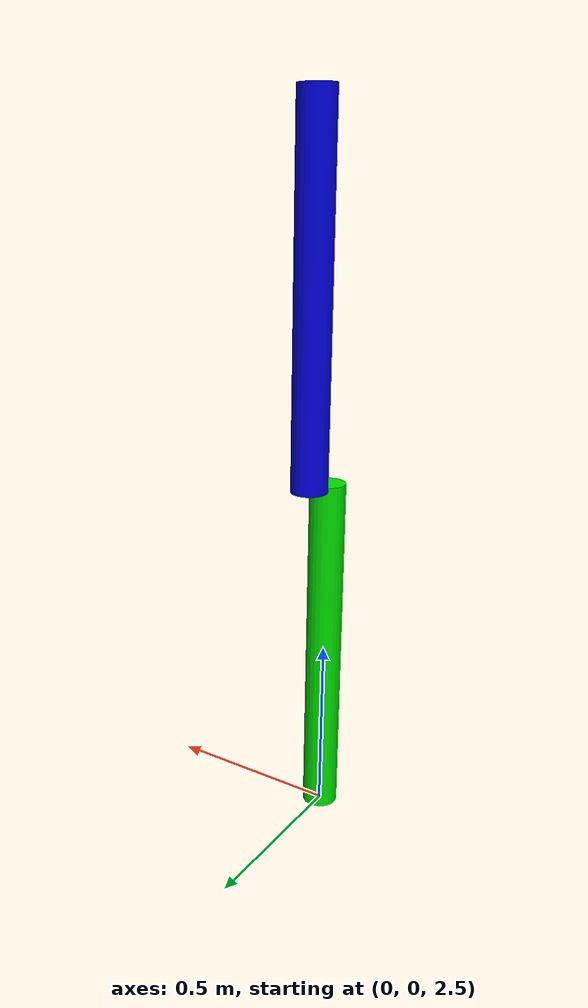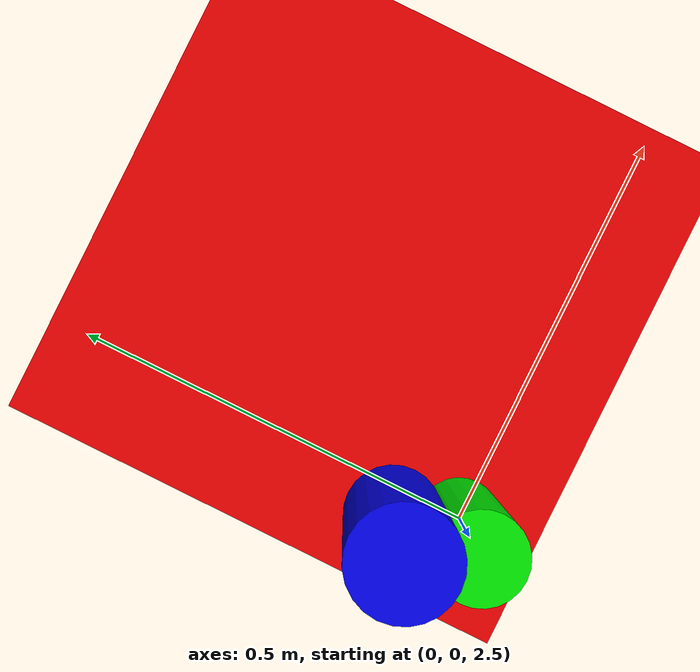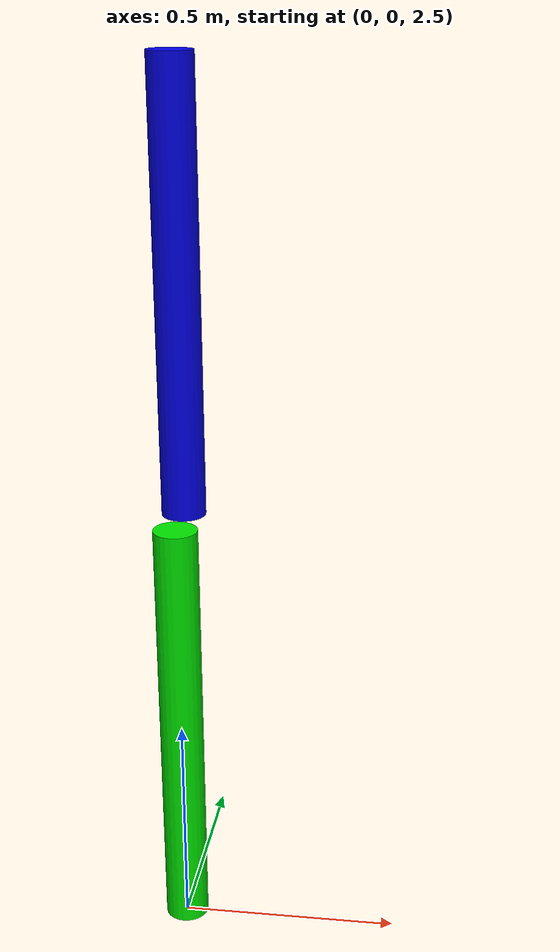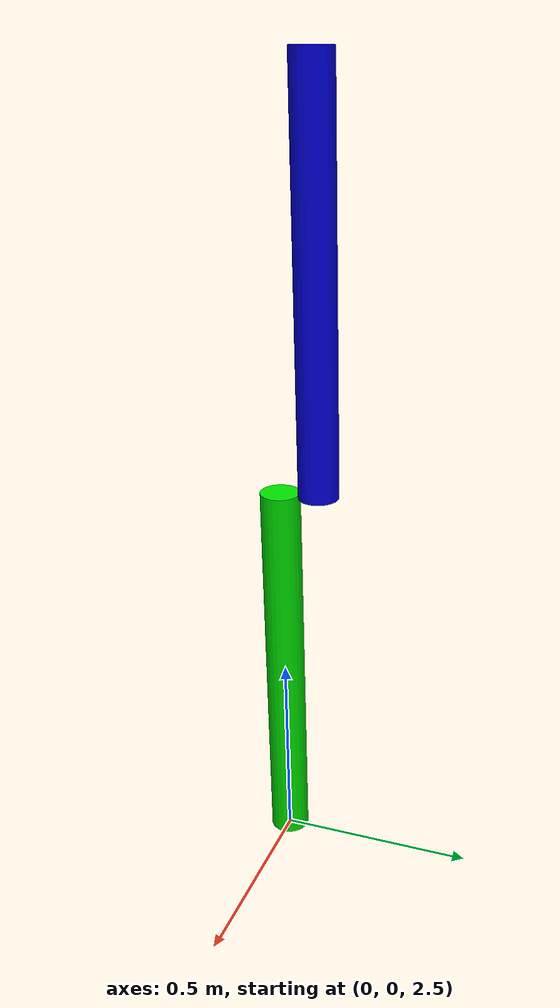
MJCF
<mujoco>
	<option timestep="0.05" gravity="0 0 -9.81" integrator="RK4">
		<flag sensornoise="enable" energy="enable"/>
	</option>
	<worldbody>
        <light diffuse=".5 .5 .5" pos="0 0 3" dir="0 0 -1"/>
		<geom type="plane" size="1 1 0.1" rgba=".9 0 0 1"/>

		<body name="link1" pos="0 0 3" euler="0 0 0">
			<joint name="pin1" type="hinge" axis = "0 1 0" pos="0 0 -0.5"/>
			<inertial pos="0 0 0" mass="1" diaginertia="1 1 1" />
			<geom type="cylinder" size="0.05 0.5" rgba="0 .9 0 1"/>

			<!-- Second Link -->
			<body name="link2" pos="0 0.1 1" euler="0 0 0">
				<joint name="pin2" type="hinge" axis = "0 1 0" pos="0 0 -0.5"/>
				<inertial pos="0 0 0" mass="1" diaginertia="1 1 1" />
				<geom type="cylinder" size="0.05 0.5" rgba="0 0 0.9 1"/>
			</body>

		</body>

	</worldbody>

	<actuator>
		<motor joint="pin1" name="torque1" gear="1" ctrllimited="true" ctrlrange="-50 50"/>
	</actuator>
</mujoco>
